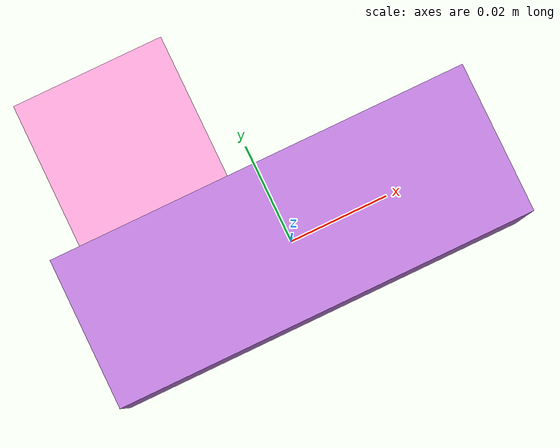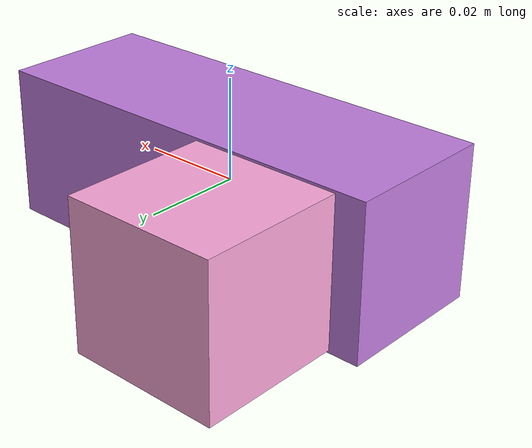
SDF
<sdf version="1.4"><world name="default"><model name="object0"><link name="link1"><pose>0 0 0 0 0 0</pose><inertial><pose>0 0 0 0 0 0</pose><mass>0.04528402083108753</mass><inertia><ixx>6.792603124663129e-06</ixx><ixy>0</ixy><iyy>2.9934178682126937e-05</iyy><ixz>0</ixz><iyz>0</iyz><izz>2.9934178682126937e-05</izz></inertia></inertial><visual name="link1_visual"><pose>0 0  0 0 0 0</pose><geometry><box><size>0.08385929783534729 0.03 0.03</size></box></geometry><material><diffuse>0.7618570727752412 0.5002933479388427 0.882352033088188 1</diffuse></material></visual><collision><pose>0 0  0 0 0 0</pose><geometry><box><size>0.08385929783534729 0.03 0.03</size></box></geometry></collision></link><link name="link2"><pose>-0.02098131123714326 0.028395896085804832 0 0 0 0</pose><inertial><pose>0 0 0 0 0 0</pose><mass>0.016450654709809446</mass><inertia><ixx>2.4251911358711948e-06</ixx><ixy>0</ixy><iyy>2.3867158208148535e-06</iyy><ixz>0</ixz><iyz>0</iyz><izz>2.506073521527758e-06</izz></inertia></inertial><visual name="link2_visual"><pose>0 0  0 0 0 0</pose><geometry><box><size>0.03 0.030464175388536015 0.028999999999999998</size></box></geometry><material><diffuse>0.9949694877440145 0.659925721900166 0.862292680323224 1</diffuse></material></visual><collision><pose>0 0  0 0 0 0</pose><geometry><box><size>0.03 0.030464175388536015 0.028999999999999998</size></box></geometry></collision></link><joint name="link_joint_0" type="fixed"><parent>link1</parent><child>link2</child><pose>0 0 0 0 0 0</pose><axis><xyz>0 0 1</xyz></axis></joint></model></world></sdf>
